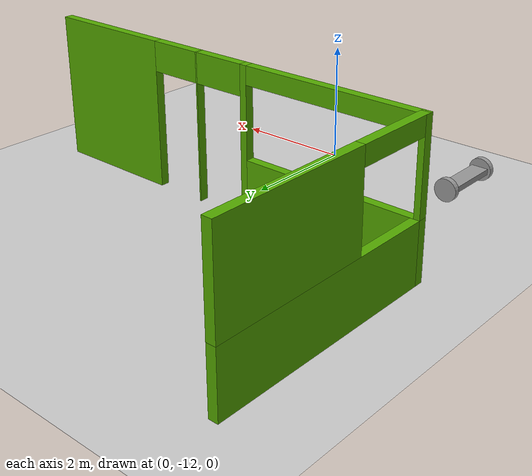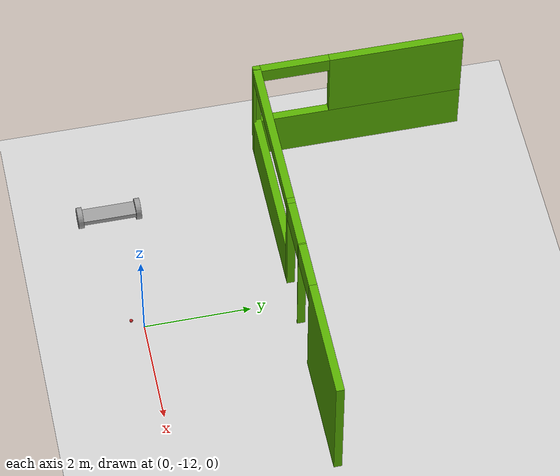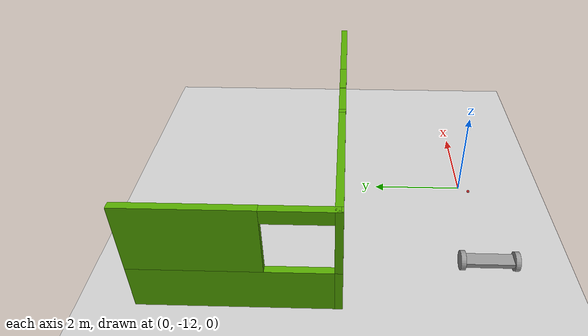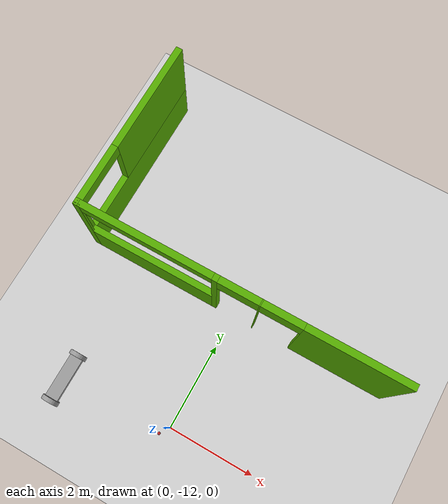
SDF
<sdf version="1.6">
 <world name="default">
  <model name="ground_plane">
   <static>1</static>
   <link name="link">
    <collision name="collision">
     <geometry><plane><normal>0 0 1</normal><size>100 100</size></plane></geometry>
     <surface><friction><ode><mu>100</mu><mu2>50</mu2></ode></friction></surface>
    </collision>
    <visual name="visual">
     <cast_shadows>0</cast_shadows>
     <geometry><plane><normal>0 0 1</normal><size>100 100</size></plane></geometry>
     <material>
      <script><uri>file://media/materials/scripts/gazebo.material</uri><name>Gazebo/Grey</name></script>
     </material>
    </visual>
   </link>
  </model>
  <model name="RoboCup SPL Ball">
   <static>0</static>
   <link name="ball">
    <inertial>
     <mass>0.0056</mass>
     <inertia>
      <ixx>2.37e-06</ixx>
      <iyy>2.37e-06</iyy>
      <izz>2.37e-06</izz>
      <ixy>0</ixy>
      <ixz>0</ixz>
      <iyz>0</iyz>
     </inertia>
    </inertial>
    <collision name="collision"><geometry><sphere><radius>0.0325</radius></sphere></geometry></collision>
    <visual name="visual">
     <geometry><sphere><radius>0.0325</radius></sphere></geometry>
     <material>
      <script><uri>file://media/materials/scripts/gazebo.material</uri><name>Gazebo/RedBright</name></script>
     </material>
    </visual>
   </link>
   <pose>-0.153773 -12.2161 0.0425 0 -0 0</pose>
  </model>
  <model name="robot">
   <link name="link_1">
    <inertial>
     <mass>1</mass>
     <inertia>
      <ixx>0.166667</ixx>
      <ixy>0</ixy>
      <ixz>0</ixz>
      <iyy>0.166667</iyy>
      <iyz>0</iyz>
      <izz>0.166667</izz>
     </inertia>
    </inertial>
    <visual name="visual">
     <geometry><box><size>0.3 1 0.1</size></box></geometry>
     <material>
      <lighting>1</lighting>
      <script><uri>file://media/materials/scripts/gazebo.material</uri><name>Gazebo/Grey</name></script>
      <ambient>0.3 0.3 0.3 1</ambient>
      <diffuse>0.7 0.7 0.7 1</diffuse>
      <specular>0.01 0.01 0.01 1</specular>
      <emissive>0 0 0 1</emissive>
      <shader type="vertex"><normal_map>__default__</normal_map></shader>
     </material>
    </visual>
    <collision name="collision">
     <geometry><box><size>0.3 1 0.1</size></box></geometry>
     <surface>
      <friction>
       <ode><mu>1</mu><mu2>1</mu2><fdir1>0 0 0</fdir1><slip1>0</slip1><slip2>0</slip2></ode>
       <torsional>
        <coefficient>1</coefficient>
        <patch_radius>0</patch_radius>
        <surface_radius>0</surface_radius>
        <use_patch_radius>1</use_patch_radius>
        <ode><slip>0</slip></ode>
       </torsional>
      </friction>
      <bounce><restitution_coefficient>0</restitution_coefficient><threshold>1e+06</threshold></bounce>
      <contact>
       <collide_without_contact>0</collide_without_contact>
       <collide_without_contact_bitmask>1</collide_without_contact_bitmask>
       <collide_bitmask>1</collide_bitmask>
       <ode>
        <soft_cfm>0</soft_cfm>
        <soft_erp>0.2</soft_erp>
        <kp>1e+13</kp>
        <kd>1</kd>
        <max_vel>0.01</max_vel>
        <min_depth>0</min_depth>
       </ode>
       <bullet>
        <split_impulse>1</split_impulse>
        <split_impulse_penetration_threshold>-0.01</split_impulse_penetration_threshold>
        <soft_cfm>0</soft_cfm>
        <soft_erp>0.2</soft_erp>
        <kp>1e+13</kp>
        <kd>1</kd>
       </bullet>
      </contact>
     </surface>
    </collision>
   </link>
   <link name="link_3">
    <pose>0 0.550019 0 1.5707 -0 0</pose>
    <inertial>
     <mass>1</mass>
     <inertia><ixx>0.145833</ixx><ixy>0</ixy><ixz>0</ixz><iyy>0.145833</iyy><iyz>0</iyz><izz>0.125</izz></inertia>
    </inertial>
    <visual name="visual">
     <geometry><cylinder><radius>0.2</radius><length>0.1</length></cylinder></geometry>
     <material>
      <lighting>1</lighting>
      <script><uri>file://media/materials/scripts/gazebo.material</uri><name>Gazebo/Grey</name></script>
      <ambient>0.3 0.3 0.3 1</ambient>
      <diffuse>0.7 0.7 0.7 1</diffuse>
      <specular>0.01 0.01 0.01 1</specular>
      <emissive>0 0 0 1</emissive>
      <shader type="vertex"><normal_map>__default__</normal_map></shader>
     </material>
    </visual>
    <collision name="collision">
     <geometry><cylinder><radius>0.2</radius><length>0.1</length></cylinder></geometry>
     <surface>
      <friction>
       <ode><mu>1</mu><mu2>1</mu2><fdir1>0 0 0</fdir1><slip1>0</slip1><slip2>0</slip2></ode>
       <torsional>
        <coefficient>1</coefficient>
        <patch_radius>0</patch_radius>
        <surface_radius>0</surface_radius>
        <use_patch_radius>1</use_patch_radius>
        <ode><slip>0</slip></ode>
       </torsional>
      </friction>
      <bounce><restitution_coefficient>0</restitution_coefficient><threshold>1e+06</threshold></bounce>
      <contact>
       <collide_without_contact>0</collide_without_contact>
       <collide_without_contact_bitmask>1</collide_without_contact_bitmask>
       <collide_bitmask>1</collide_bitmask>
       <ode>
        <soft_cfm>0</soft_cfm>
        <soft_erp>0.2</soft_erp>
        <kp>1e+13</kp>
        <kd>1</kd>
        <max_vel>0.01</max_vel>
        <min_depth>0</min_depth>
       </ode>
       <bullet>
        <split_impulse>1</split_impulse>
        <split_impulse_penetration_threshold>-0.01</split_impulse_penetration_threshold>
        <soft_cfm>0</soft_cfm>
        <soft_erp>0.2</soft_erp>
        <kp>1e+13</kp>
        <kd>1</kd>
       </bullet>
      </contact>
     </surface>
    </collision>
   </link>
   <link name="link_3_clone">
    <pose>0 -0.550019 0 1.5707 -0 0</pose>
    <inertial>
     <mass>1</mass>
     <inertia><ixx>0.145833</ixx><ixy>0</ixy><ixz>0</ixz><iyy>0.145833</iyy><iyz>0</iyz><izz>0.125</izz></inertia>
    </inertial>
    <visual name="visual">
     <geometry><cylinder><radius>0.2</radius><length>0.1</length></cylinder></geometry>
     <material>
      <lighting>1</lighting>
      <script><uri>file://media/materials/scripts/gazebo.material</uri><name>Gazebo/Grey</name></script>
      <ambient>0.3 0.3 0.3 1</ambient>
      <diffuse>0.7 0.7 0.7 1</diffuse>
      <specular>0.01 0.01 0.01 1</specular>
      <emissive>0 0 0 1</emissive>
      <shader type="vertex"><normal_map>__default__</normal_map></shader>
     </material>
    </visual>
    <collision name="collision">
     <geometry><cylinder><radius>0.2</radius><length>0.1</length></cylinder></geometry>
     <surface>
      <friction>
       <ode><mu>1</mu><mu2>1</mu2><fdir1>0 0 0</fdir1><slip1>0</slip1><slip2>0</slip2></ode>
       <torsional>
        <coefficient>1</coefficient>
        <patch_radius>0</patch_radius>
        <surface_radius>0</surface_radius>
        <use_patch_radius>1</use_patch_radius>
        <ode><slip>0</slip></ode>
       </torsional>
      </friction>
      <bounce><restitution_coefficient>0</restitution_coefficient><threshold>1e+06</threshold></bounce>
      <contact>
       <collide_without_contact>0</collide_without_contact>
       <collide_without_contact_bitmask>1</collide_without_contact_bitmask>
       <collide_bitmask>1</collide_bitmask>
       <ode>
        <soft_cfm>0</soft_cfm>
        <soft_erp>0.2</soft_erp>
        <kp>1e+13</kp>
        <kd>1</kd>
        <max_vel>0.01</max_vel>
        <min_depth>0</min_depth>
       </ode>
       <bullet>
        <split_impulse>1</split_impulse>
        <split_impulse_penetration_threshold>-0.01</split_impulse_penetration_threshold>
        <soft_cfm>0</soft_cfm>
        <soft_erp>0.2</soft_erp>
        <kp>1e+13</kp>
        <kd>1</kd>
       </bullet>
      </contact>
     </surface>
    </collision>
   </link>
   <joint name="link_1_JOINT_2" type="revolute">
    <parent>link_1</parent>
    <child>link_3_clone</child>
    <axis>
     <xyz>1 0 0</xyz>
     <use_parent_model_frame>0</use_parent_model_frame>
     <limit>
      <lower>-1.79769e+308</lower>
      <upper>1.79769e+308</upper>
      <effort>-1</effort>
      <velocity>-1</velocity>
     </limit>
     <dynamics>
      <spring_reference>0</spring_reference>
      <spring_stiffness>0</spring_stiffness>
      <damping>0</damping>
     </dynamics>
    </axis>
    <physics>
     <ode><limit><cfm>0</cfm><erp>0.2</erp></limit><suspension><cfm>0</cfm><erp>0.2</erp></suspension></ode>
    </physics>
   </joint>
   <joint name="link_1_JOINT_4" type="revolute">
    <parent>link_1</parent>
    <child>link_3</child>
    <axis>
     <xyz>1 0 0</xyz>
     <use_parent_model_frame>0</use_parent_model_frame>
     <limit>
      <lower>-1.79769e+308</lower>
      <upper>1.79769e+308</upper>
      <effort>-1</effort>
      <velocity>-1</velocity>
     </limit>
     <dynamics>
      <spring_reference>0</spring_reference>
      <spring_stiffness>0</spring_stiffness>
      <damping>0</damping>
     </dynamics>
    </axis>
    <physics>
     <ode><limit><cfm>0</cfm><erp>0.2</erp></limit><suspension><cfm>0</cfm><erp>0.2</erp></suspension></ode>
    </physics>
   </joint>
   <static>0</static>
   <pose>-2.52728 -12.2137 0.209999 -1e-06 2e-06 -0</pose>
  </model>
  <model name="1floorHouse">
   <link name="Wall_292">
    <pose>-4.3959 -4.53994 0 0 0 -3.14158</pose>
    <visual name="Wall_292_Visual_0">
     <pose>-2.52118 0 1.25 0 -0 0</pose>
     <geometry><box><size>2.25743 0.15 2.5</size></box></geometry>
     <material>
      <script><uri>file://media/materials/scripts/gazebo.material</uri><name>Gazebo/Grey</name></script>
      <ambient>0.333333 0.666667 0 1</ambient>
      <diffuse>0.7 0.7 0.7 1</diffuse>
      <specular>0.01 0.01 0.01 1</specular>
      <emissive>0 0 0 1</emissive>
     </material>
    </visual>
    <visual name="Wall_292_Visual_1">
     <pose>-0.479853 0 1.25 0 -0 0</pose>
     <geometry><box><size>0.025221 0.15 2.5</size></box></geometry>
     <material>
      <script><uri>file://media/materials/scripts/gazebo.material</uri><name>Gazebo/Grey</name></script>
      <ambient>0.333333 0.666667 0 1</ambient>
      <diffuse>0.7 0.7 0.7 1</diffuse>
      <specular>0.01 0.01 0.01 1</specular>
      <emissive>0 0 0 1</emissive>
     </material>
    </visual>
    <visual name="Wall_292_Visual_2">
     <pose>0.492301 0 1.25 0 -0 0</pose>
     <geometry><box><size>0.119086 0.15 2.5</size></box></geometry>
     <material>
      <script><uri>file://media/materials/scripts/gazebo.material</uri><name>Gazebo/Grey</name></script>
      <ambient>0.333333 0.666667 0 1</ambient>
      <diffuse>0.7 0.7 0.7 1</diffuse>
      <specular>0.01 0.01 0.01 1</specular>
      <emissive>0 0 0 1</emissive>
     </material>
    </visual>
    <visual name="Wall_292_Visual_3">
     <pose>2.10087 0 0.5 0 -0 0</pose>
     <geometry><box><size>3.09805 0.15 1</size></box></geometry>
     <material>
      <script><uri>file://media/materials/scripts/gazebo.material</uri><name>Gazebo/Grey</name></script>
      <ambient>0.333333 0.666667 0 1</ambient>
      <diffuse>0.7 0.7 0.7 1</diffuse>
      <specular>0.01 0.01 0.01 1</specular>
      <emissive>0 0 0 1</emissive>
     </material>
    </visual>
    <visual name="Wall_292_Visual_4">
     <pose>3.60087 0 1.75 0 -0 0</pose>
     <geometry><box><size>0.098047 0.15 1.5</size></box></geometry>
     <material>
      <script><uri>file://media/materials/scripts/gazebo.material</uri><name>Gazebo/Grey</name></script>
      <ambient>0.333333 0.666667 0 1</ambient>
      <diffuse>0.7 0.7 0.7 1</diffuse>
      <specular>0.01 0.01 0.01 1</specular>
      <emissive>0 0 0 1</emissive>
     </material>
    </visual>
    <visual name="Wall_292_Visual_5">
     <pose>-0.942463 0 2.25 0 -0 0</pose>
     <geometry><box><size>0.9 0.15 0.5</size></box></geometry>
     <material>
      <script><uri>file://media/materials/scripts/gazebo.material</uri><name>Gazebo/Grey</name></script>
      <ambient>0.333333 0.666667 0 1</ambient>
      <diffuse>0.7 0.7 0.7 1</diffuse>
      <specular>0.01 0.01 0.01 1</specular>
      <emissive>0 0 0 1</emissive>
     </material>
    </visual>
    <visual name="Wall_292_Visual_6">
     <pose>-0.017242 0 2.25 0 -0 0</pose>
     <geometry><box><size>0.9 0.15 0.5</size></box></geometry>
     <material>
      <script><uri>file://media/materials/scripts/gazebo.material</uri><name>Gazebo/Grey</name></script>
      <ambient>0.333333 0.666667 0 1</ambient>
      <diffuse>0.7 0.7 0.7 1</diffuse>
      <specular>0.01 0.01 0.01 1</specular>
      <emissive>0 0 0 1</emissive>
     </material>
    </visual>
    <visual name="Wall_292_Visual_7">
     <pose>2.05184 0 2.35 0 -0 0</pose>
     <geometry><box><size>3 0.15 0.3</size></box></geometry>
     <material>
      <script><uri>file://media/materials/scripts/gazebo.material</uri><name>Gazebo/Grey</name></script>
      <ambient>0.333333 0.666667 0 1</ambient>
      <diffuse>0.7 0.7 0.7 1</diffuse>
      <specular>0.01 0.01 0.01 1</specular>
      <emissive>0 0 0 1</emissive>
     </material>
    </visual>
    <collision name="Wall_292_Collision_1">
     <pose>-0.479853 0 1.25 0 -0 0</pose>
     <geometry><box><size>0.025221 0.15 2.5</size></box></geometry>
     <surface>
      <friction>
       <ode><mu>1</mu><mu2>1</mu2><fdir1>0 0 0</fdir1><slip1>0</slip1><slip2>0</slip2></ode>
       <torsional>
        <coefficient>1</coefficient>
        <patch_radius>0</patch_radius>
        <surface_radius>0</surface_radius>
        <use_patch_radius>1</use_patch_radius>
        <ode><slip>0</slip></ode>
       </torsional>
      </friction>
      <bounce><restitution_coefficient>0</restitution_coefficient><threshold>1e+06</threshold></bounce>
      <contact>
       <collide_without_contact>0</collide_without_contact>
       <collide_without_contact_bitmask>1</collide_without_contact_bitmask>
       <collide_bitmask>1</collide_bitmask>
       <ode>
        <soft_cfm>0</soft_cfm>
        <soft_erp>0.2</soft_erp>
        <kp>1e+13</kp>
        <kd>1</kd>
        <max_vel>0.01</max_vel>
        <min_depth>0</min_depth>
       </ode>
       <bullet>
        <split_impulse>1</split_impulse>
        <split_impulse_penetration_threshold>-0.01</split_impulse_penetration_threshold>
        <soft_cfm>0</soft_cfm>
        <soft_erp>0.2</soft_erp>
        <kp>1e+13</kp>
        <kd>1</kd>
       </bullet>
      </contact>
     </surface>
    </collision>
    <collision name="Wall_292_Collision_0">
     <pose>-2.52118 0 1.25 0 -0 0</pose>
     <geometry><box><size>2.25743 0.15 2.5</size></box></geometry>
     <surface>
      <friction>
       <ode><mu>1</mu><mu2>1</mu2><fdir1>0 0 0</fdir1><slip1>0</slip1><slip2>0</slip2></ode>
       <torsional>
        <coefficient>1</coefficient>
        <patch_radius>0</patch_radius>
        <surface_radius>0</surface_radius>
        <use_patch_radius>1</use_patch_radius>
        <ode><slip>0</slip></ode>
       </torsional>
      </friction>
      <bounce><restitution_coefficient>0</restitution_coefficient><threshold>1e+06</threshold></bounce>
      <contact>
       <collide_without_contact>0</collide_without_contact>
       <collide_without_contact_bitmask>1</collide_without_contact_bitmask>
       <collide_bitmask>1</collide_bitmask>
       <ode>
        <soft_cfm>0</soft_cfm>
        <soft_erp>0.2</soft_erp>
        <kp>1e+13</kp>
        <kd>1</kd>
        <max_vel>0.01</max_vel>
        <min_depth>0</min_depth>
       </ode>
       <bullet>
        <split_impulse>1</split_impulse>
        <split_impulse_penetration_threshold>-0.01</split_impulse_penetration_threshold>
        <soft_cfm>0</soft_cfm>
        <soft_erp>0.2</soft_erp>
        <kp>1e+13</kp>
        <kd>1</kd>
       </bullet>
      </contact>
     </surface>
    </collision>
    <collision name="Wall_292_Collision_2">
     <pose>0.492301 0 1.25 0 -0 0</pose>
     <geometry><box><size>0.119086 0.15 2.5</size></box></geometry>
     <surface>
      <friction>
       <ode><mu>1</mu><mu2>1</mu2><fdir1>0 0 0</fdir1><slip1>0</slip1><slip2>0</slip2></ode>
       <torsional>
        <coefficient>1</coefficient>
        <patch_radius>0</patch_radius>
        <surface_radius>0</surface_radius>
        <use_patch_radius>1</use_patch_radius>
        <ode><slip>0</slip></ode>
       </torsional>
      </friction>
      <bounce><restitution_coefficient>0</restitution_coefficient><threshold>1e+06</threshold></bounce>
      <contact>
       <collide_without_contact>0</collide_without_contact>
       <collide_without_contact_bitmask>1</collide_without_contact_bitmask>
       <collide_bitmask>1</collide_bitmask>
       <ode>
        <soft_cfm>0</soft_cfm>
        <soft_erp>0.2</soft_erp>
        <kp>1e+13</kp>
        <kd>1</kd>
        <max_vel>0.01</max_vel>
        <min_depth>0</min_depth>
       </ode>
       <bullet>
        <split_impulse>1</split_impulse>
        <split_impulse_penetration_threshold>-0.01</split_impulse_penetration_threshold>
        <soft_cfm>0</soft_cfm>
        <soft_erp>0.2</soft_erp>
        <kp>1e+13</kp>
        <kd>1</kd>
       </bullet>
      </contact>
     </surface>
    </collision>
    <collision name="Wall_292_Collision_3">
     <pose>2.10087 0 0.5 0 -0 0</pose>
     <geometry><box><size>3.09805 0.15 1</size></box></geometry>
     <surface>
      <friction>
       <ode><mu>1</mu><mu2>1</mu2><fdir1>0 0 0</fdir1><slip1>0</slip1><slip2>0</slip2></ode>
       <torsional>
        <coefficient>1</coefficient>
        <patch_radius>0</patch_radius>
        <surface_radius>0</surface_radius>
        <use_patch_radius>1</use_patch_radius>
        <ode><slip>0</slip></ode>
       </torsional>
      </friction>
      <bounce><restitution_coefficient>0</restitution_coefficient><threshold>1e+06</threshold></bounce>
      <contact>
       <collide_without_contact>0</collide_without_contact>
       <collide_without_contact_bitmask>1</collide_without_contact_bitmask>
       <collide_bitmask>1</collide_bitmask>
       <ode>
        <soft_cfm>0</soft_cfm>
        <soft_erp>0.2</soft_erp>
        <kp>1e+13</kp>
        <kd>1</kd>
        <max_vel>0.01</max_vel>
        <min_depth>0</min_depth>
       </ode>
       <bullet>
        <split_impulse>1</split_impulse>
        <split_impulse_penetration_threshold>-0.01</split_impulse_penetration_threshold>
        <soft_cfm>0</soft_cfm>
        <soft_erp>0.2</soft_erp>
        <kp>1e+13</kp>
        <kd>1</kd>
       </bullet>
      </contact>
     </surface>
    </collision>
    <collision name="Wall_292_Collision_4">
     <pose>3.60087 0 1.75 0 -0 0</pose>
     <geometry><box><size>0.098047 0.15 1.5</size></box></geometry>
     <surface>
      <friction>
       <ode><mu>1</mu><mu2>1</mu2><fdir1>0 0 0</fdir1><slip1>0</slip1><slip2>0</slip2></ode>
       <torsional>
        <coefficient>1</coefficient>
        <patch_radius>0</patch_radius>
        <surface_radius>0</surface_radius>
        <use_patch_radius>1</use_patch_radius>
        <ode><slip>0</slip></ode>
       </torsional>
      </friction>
      <bounce><restitution_coefficient>0</restitution_coefficient><threshold>1e+06</threshold></bounce>
      <contact>
       <collide_without_contact>0</collide_without_contact>
       <collide_without_contact_bitmask>1</collide_without_contact_bitmask>
       <collide_bitmask>1</collide_bitmask>
       <ode>
        <soft_cfm>0</soft_cfm>
        <soft_erp>0.2</soft_erp>
        <kp>1e+13</kp>
        <kd>1</kd>
        <max_vel>0.01</max_vel>
        <min_depth>0</min_depth>
       </ode>
       <bullet>
        <split_impulse>1</split_impulse>
        <split_impulse_penetration_threshold>-0.01</split_impulse_penetration_threshold>
        <soft_cfm>0</soft_cfm>
        <soft_erp>0.2</soft_erp>
        <kp>1e+13</kp>
        <kd>1</kd>
       </bullet>
      </contact>
     </surface>
    </collision>
    <collision name="Wall_292_Collision_5">
     <pose>-0.942463 0 2.25 0 -0 0</pose>
     <geometry><box><size>0.9 0.15 0.5</size></box></geometry>
     <surface>
      <friction>
       <ode><mu>1</mu><mu2>1</mu2><fdir1>0 0 0</fdir1><slip1>0</slip1><slip2>0</slip2></ode>
       <torsional>
        <coefficient>1</coefficient>
        <patch_radius>0</patch_radius>
        <surface_radius>0</surface_radius>
        <use_patch_radius>1</use_patch_radius>
        <ode><slip>0</slip></ode>
       </torsional>
      </friction>
      <bounce><restitution_coefficient>0</restitution_coefficient><threshold>1e+06</threshold></bounce>
      <contact>
       <collide_without_contact>0</collide_without_contact>
       <collide_without_contact_bitmask>1</collide_without_contact_bitmask>
       <collide_bitmask>1</collide_bitmask>
       <ode>
        <soft_cfm>0</soft_cfm>
        <soft_erp>0.2</soft_erp>
        <kp>1e+13</kp>
        <kd>1</kd>
        <max_vel>0.01</max_vel>
        <min_depth>0</min_depth>
       </ode>
       <bullet>
        <split_impulse>1</split_impulse>
        <split_impulse_penetration_threshold>-0.01</split_impulse_penetration_threshold>
        <soft_cfm>0</soft_cfm>
        <soft_erp>0.2</soft_erp>
        <kp>1e+13</kp>
        <kd>1</kd>
       </bullet>
      </contact>
     </surface>
    </collision>
    <collision name="Wall_292_Collision_7">
     <pose>2.05184 0 2.35 0 -0 0</pose>
     <geometry><box><size>3 0.15 0.3</size></box></geometry>
     <surface>
      <friction>
       <ode><mu>1</mu><mu2>1</mu2><fdir1>0 0 0</fdir1><slip1>0</slip1><slip2>0</slip2></ode>
       <torsional>
        <coefficient>1</coefficient>
        <patch_radius>0</patch_radius>
        <surface_radius>0</surface_radius>
        <use_patch_radius>1</use_patch_radius>
        <ode><slip>0</slip></ode>
       </torsional>
      </friction>
      <bounce><restitution_coefficient>0</restitution_coefficient><threshold>1e+06</threshold></bounce>
      <contact>
       <collide_without_contact>0</collide_without_contact>
       <collide_without_contact_bitmask>1</collide_without_contact_bitmask>
       <collide_bitmask>1</collide_bitmask>
       <ode>
        <soft_cfm>0</soft_cfm>
        <soft_erp>0.2</soft_erp>
        <kp>1e+13</kp>
        <kd>1</kd>
        <max_vel>0.01</max_vel>
        <min_depth>0</min_depth>
       </ode>
       <bullet>
        <split_impulse>1</split_impulse>
        <split_impulse_penetration_threshold>-0.01</split_impulse_penetration_threshold>
        <soft_cfm>0</soft_cfm>
        <soft_erp>0.2</soft_erp>
        <kp>1e+13</kp>
        <kd>1</kd>
       </bullet>
      </contact>
     </surface>
    </collision>
    <collision name="Wall_292_Collision_6">
     <pose>-0.017242 0 2.25 0 -0 0</pose>
     <geometry><box><size>0.9 0.15 0.5</size></box></geometry>
     <surface>
      <friction>
       <ode><mu>1</mu><mu2>1</mu2><fdir1>0 0 0</fdir1><slip1>0</slip1><slip2>0</slip2></ode>
       <torsional>
        <coefficient>1</coefficient>
        <patch_radius>0</patch_radius>
        <surface_radius>0</surface_radius>
        <use_patch_radius>1</use_patch_radius>
        <ode><slip>0</slip></ode>
       </torsional>
      </friction>
      <bounce><restitution_coefficient>0</restitution_coefficient><threshold>1e+06</threshold></bounce>
      <contact>
       <collide_without_contact>0</collide_without_contact>
       <collide_without_contact_bitmask>1</collide_without_contact_bitmask>
       <collide_bitmask>1</collide_bitmask>
       <ode>
        <soft_cfm>0</soft_cfm>
        <soft_erp>0.2</soft_erp>
        <kp>1e+13</kp>
        <kd>1</kd>
        <max_vel>0.01</max_vel>
        <min_depth>0</min_depth>
       </ode>
       <bullet>
        <split_impulse>1</split_impulse>
        <split_impulse_penetration_threshold>-0.01</split_impulse_penetration_threshold>
        <soft_cfm>0</soft_cfm>
        <soft_erp>0.2</soft_erp>
        <kp>1e+13</kp>
        <kd>1</kd>
       </bullet>
      </contact>
     </surface>
    </collision>
   </link>
   <link name="Wall_293">
    <pose>-7.97079 -2.615 0 0 -0 1.5708</pose>
    <visual name="Wall_293_Visual_0">
     <pose>-1.97712 0 1.25 0 -0 0</pose>
     <geometry><box><size>0.045764 0.15 2.5</size></box></geometry>
     <material>
      <script><uri>file://media/materials/scripts/gazebo.material</uri><name>Gazebo/Grey</name></script>
      <ambient>0.333333 0.666667 0 1</ambient>
      <diffuse>0.7 0.7 0.7 1</diffuse>
      <specular>0.01 0.01 0.01 1</specular>
      <emissive>0 0 0 1</emissive>
     </material>
    </visual>
    <visual name="Wall_293_Visual_1">
     <pose>0.022882 0 0.5 0 -0 0</pose>
     <geometry><box><size>3.95424 0.15 1</size></box></geometry>
     <material>
      <script><uri>file://media/materials/scripts/gazebo.material</uri><name>Gazebo/Grey</name></script>
      <ambient>0.333333 0.666667 0 1</ambient>
      <diffuse>0.7 0.7 0.7 1</diffuse>
      <specular>0.01 0.01 0.01 1</specular>
      <emissive>0 0 0 1</emissive>
     </material>
    </visual>
    <visual name="Wall_293_Visual_2">
     <pose>0.722882 0 1.75 0 -0 0</pose>
     <geometry><box><size>2.55424 0.15 1.5</size></box></geometry>
     <material>
      <script><uri>file://media/materials/scripts/gazebo.material</uri><name>Gazebo/Grey</name></script>
      <ambient>0.333333 0.666667 0 1</ambient>
      <diffuse>0.7 0.7 0.7 1</diffuse>
      <specular>0.01 0.01 0.01 1</specular>
      <emissive>0 0 0 1</emissive>
     </material>
    </visual>
    <visual name="Wall_293_Visual_3">
     <pose>-1.25424 0 2.35 0 -0 0</pose>
     <geometry><box><size>1.4 0.15 0.3</size></box></geometry>
     <material>
      <script><uri>file://media/materials/scripts/gazebo.material</uri><name>Gazebo/Grey</name></script>
      <ambient>0.333333 0.666667 0 1</ambient>
      <diffuse>0.7 0.7 0.7 1</diffuse>
      <specular>0.01 0.01 0.01 1</specular>
      <emissive>0 0 0 1</emissive>
     </material>
    </visual>
    <collision name="Wall_293_Collision_0">
     <pose>-1.97712 0 1.25 0 -0 0</pose>
     <geometry><box><size>0.045764 0.15 2.5</size></box></geometry>
     <surface>
      <friction>
       <ode><mu>1</mu><mu2>1</mu2><fdir1>0 0 0</fdir1><slip1>0</slip1><slip2>0</slip2></ode>
       <torsional>
        <coefficient>1</coefficient>
        <patch_radius>0</patch_radius>
        <surface_radius>0</surface_radius>
        <use_patch_radius>1</use_patch_radius>
        <ode><slip>0</slip></ode>
       </torsional>
      </friction>
      <bounce><restitution_coefficient>0</restitution_coefficient><threshold>1e+06</threshold></bounce>
      <contact>
       <collide_without_contact>0</collide_without_contact>
       <collide_without_contact_bitmask>1</collide_without_contact_bitmask>
       <collide_bitmask>1</collide_bitmask>
       <ode>
        <soft_cfm>0</soft_cfm>
        <soft_erp>0.2</soft_erp>
        <kp>1e+13</kp>
        <kd>1</kd>
        <max_vel>0.01</max_vel>
        <min_depth>0</min_depth>
       </ode>
       <bullet>
        <split_impulse>1</split_impulse>
        <split_impulse_penetration_threshold>-0.01</split_impulse_penetration_threshold>
        <soft_cfm>0</soft_cfm>
        <soft_erp>0.2</soft_erp>
        <kp>1e+13</kp>
        <kd>1</kd>
       </bullet>
      </contact>
     </surface>
    </collision>
    <collision name="Wall_293_Collision_1">
     <pose>0.022882 0 0.5 0 -0 0</pose>
     <geometry><box><size>3.95424 0.15 1</size></box></geometry>
     <surface>
      <friction>
       <ode><mu>1</mu><mu2>1</mu2><fdir1>0 0 0</fdir1><slip1>0</slip1><slip2>0</slip2></ode>
       <torsional>
        <coefficient>1</coefficient>
        <patch_radius>0</patch_radius>
        <surface_radius>0</surface_radius>
        <use_patch_radius>1</use_patch_radius>
        <ode><slip>0</slip></ode>
       </torsional>
      </friction>
      <bounce><restitution_coefficient>0</restitution_coefficient><threshold>1e+06</threshold></bounce>
      <contact>
       <collide_without_contact>0</collide_without_contact>
       <collide_without_contact_bitmask>1</collide_without_contact_bitmask>
       <collide_bitmask>1</collide_bitmask>
       <ode>
        <soft_cfm>0</soft_cfm>
        <soft_erp>0.2</soft_erp>
        <kp>1e+13</kp>
        <kd>1</kd>
        <max_vel>0.01</max_vel>
        <min_depth>0</min_depth>
       </ode>
       <bullet>
        <split_impulse>1</split_impulse>
        <split_impulse_penetration_threshold>-0.01</split_impulse_penetration_threshold>
        <soft_cfm>0</soft_cfm>
        <soft_erp>0.2</soft_erp>
        <kp>1e+13</kp>
        <kd>1</kd>
       </bullet>
      </contact>
     </surface>
    </collision>
    <collision name="Wall_293_Collision_2">
     <pose>0.722882 0 1.75 0 -0 0</pose>
     <geometry><box><size>2.55424 0.15 1.5</size></box></geometry>
     <surface>
      <friction>
       <ode><mu>1</mu><mu2>1</mu2><fdir1>0 0 0</fdir1><slip1>0</slip1><slip2>0</slip2></ode>
       <torsional>
        <coefficient>1</coefficient>
        <patch_radius>0</patch_radius>
        <surface_radius>0</surface_radius>
        <use_patch_radius>1</use_patch_radius>
        <ode><slip>0</slip></ode>
       </torsional>
      </friction>
      <bounce><restitution_coefficient>0</restitution_coefficient><threshold>1e+06</threshold></bounce>
      <contact>
       <collide_without_contact>0</collide_without_contact>
       <collide_without_contact_bitmask>1</collide_without_contact_bitmask>
       <collide_bitmask>1</collide_bitmask>
       <ode>
        <soft_cfm>0</soft_cfm>
        <soft_erp>0.2</soft_erp>
        <kp>1e+13</kp>
        <kd>1</kd>
        <max_vel>0.01</max_vel>
        <min_depth>0</min_depth>
       </ode>
       <bullet>
        <split_impulse>1</split_impulse>
        <split_impulse_penetration_threshold>-0.01</split_impulse_penetration_threshold>
        <soft_cfm>0</soft_cfm>
        <soft_erp>0.2</soft_erp>
        <kp>1e+13</kp>
        <kd>1</kd>
       </bullet>
      </contact>
     </surface>
    </collision>
    <collision name="Wall_293_Collision_3">
     <pose>-1.25424 0 2.35 0 -0 0</pose>
     <geometry><box><size>1.4 0.15 0.3</size></box></geometry>
     <surface>
      <friction>
       <ode><mu>1</mu><mu2>1</mu2><fdir1>0 0 0</fdir1><slip1>0</slip1><slip2>0</slip2></ode>
       <torsional>
        <coefficient>1</coefficient>
        <patch_radius>0</patch_radius>
        <surface_radius>0</surface_radius>
        <use_patch_radius>1</use_patch_radius>
        <ode><slip>0</slip></ode>
       </torsional>
      </friction>
      <bounce><restitution_coefficient>0</restitution_coefficient><threshold>1e+06</threshold></bounce>
      <contact>
       <collide_without_contact>0</collide_without_contact>
       <collide_without_contact_bitmask>1</collide_without_contact_bitmask>
       <collide_bitmask>1</collide_bitmask>
       <ode>
        <soft_cfm>0</soft_cfm>
        <soft_erp>0.2</soft_erp>
        <kp>1e+13</kp>
        <kd>1</kd>
        <max_vel>0.01</max_vel>
        <min_depth>0</min_depth>
       </ode>
       <bullet>
        <split_impulse>1</split_impulse>
        <split_impulse_penetration_threshold>-0.01</split_impulse_penetration_threshold>
        <soft_cfm>0</soft_cfm>
        <soft_erp>0.2</soft_erp>
        <kp>1e+13</kp>
        <kd>1</kd>
       </bullet>
      </contact>
     </surface>
    </collision>
   </link>
   <static>1</static>
   <pose>4.39833 -4.61297 0 0 -0 0</pose>
  </model>
 </world>
</sdf>
